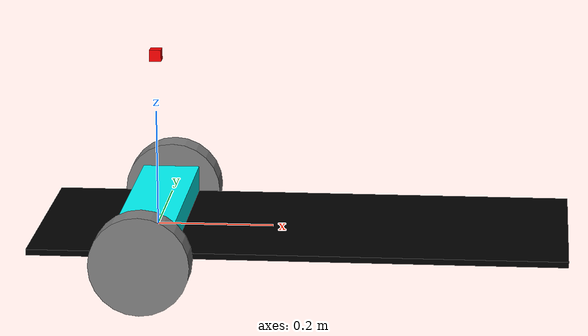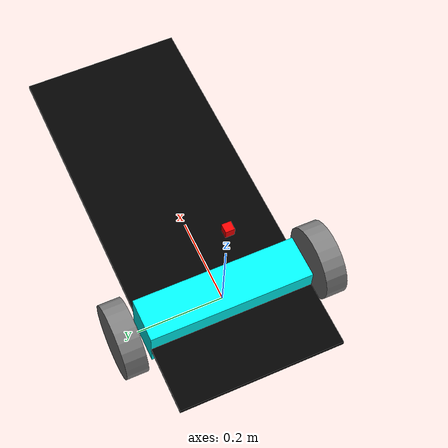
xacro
<?xml version="1.0"?>

<robot name="myfirst" xmlns:xacro="http://ros.org/wiki/xacro">

  <xacro:include filename="$(find robot_launch)/urdf/materials.urdf"/>

  <xacro:property name="base_width" value="0.38"/>
  <xacro:property name="base_length" value="0.910"/>
  <xacro:property name="base_height" value="0.01"/>
  <xacro:property name="base_xoff" value="0.20"/>
  <xacro:property name="base_zoff" value="0.02"/>

  <xacro:property name="bar_height" value="0.540"/>

  <xacro:property name="wheel_radius" value="0.085"/>
  <xacro:property name="wheel_width" value="0.05"/>
  <xacro:property name="wheel_ygap" value="0.045"/>
  <xacro:property name="wheel_zoff" value="0.0"/>
  <xacro:property name="wheel_xoff" value="0.0"/>

  <xacro:property name="caster_xoff" value="0.14"/>

  <!-- Robot Base -->
  <link name="base_link">
  <!-- middle in between wheels -->
    <visual>
      <geometry>
        <box size="0.1 ${base_width} 0.1"/>
      </geometry>
      <material name="Cyan" />
    </visual>
  </link>

  <link name="box_link">
    <visual>
      <geometry>
        <box size="${base_length} ${base_width} ${base_height}"/>
      </geometry>
      <material name="Black" />
    </visual>
  </link>

    <joint name="box_joint" type="fixed">
      <parent link="base_link"/>
      <child link="box_link"/>
      <origin xyz="${base_length / 2 - base_xoff} 0 0" rpy="0 0 0"/>
    </joint>

  <xacro:include filename="$(find robot_launch)/urdf/imu.urdf.xacro" />
        <!-- The following kinect2_xacro defines the _kinect2_rgb_optical_frame
        And includes the fixed joint  -->
        <xacro:imu_sensor parent="base_link" xyz="0 0 0.30" rpy="0 0 0">
        </xacro:imu_sensor>
<!-- The following kinect2_xacro defines the _kinect2_rgb_optical_frame
        And includes the fixed joint  -->

  <!-- Robot Footprint -->
  <link name="base_footprint"/>

  <joint name="base_joint" type="fixed">
    <parent link="base_link"/>
    <child link="base_footprint"/>
    <origin xyz="0.0 0.0 ${-(wheel_radius+wheel_zoff)}" rpy="0 0 0"/>
  </joint>

    <!-- Wheels -->
  <xacro:macro name="wheel" params="prefix x_reflect y_reflect">
    <link name="${prefix}_link">
      <visual>
        <origin xyz="0 0 0" rpy="${pi/2} 0 0"/>
        <geometry>
            <cylinder radius="${wheel_radius}" length="${wheel_width}"/>
        </geometry>
        <material name="Gray">
          <color rgba="0.5 0.5 0.5 1.0"/>
        </material>
      </visual>
    </link>

    <joint name="${prefix}_joint" type="continuous">
      <parent link="base_link"/>
      <child link="${prefix}_link"/>
      <origin xyz="${x_reflect*wheel_xoff} ${y_reflect*(base_width/2+wheel_ygap)} ${-wheel_zoff}" rpy="0 0 0"/>
      <axis xyz="0 1 0"/>
    </joint>
  </xacro:macro>

  <xacro:wheel prefix="left_wheel" x_reflect="-1" y_reflect="1" />
  <xacro:wheel prefix="right_wheel" x_reflect="-1" y_reflect="-1" />

    <!-- Caster Wheel -->

</robot>

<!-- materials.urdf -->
<robot>
        <material name="Cyan">
            <color rgba="0 1.0 1.0 1.0"/>
        </material>

  <material name="Green">
    <color rgba="0.0 1.0 0.0 1.0"/>
  </material>

  <material name="Yellow">
    <color rgba="1.0 1.0 0.0 1.0"/>
  </material>

  <material name="LightYellow">
    <color rgba="1.0 1.0 0.6 1.0"/>
  </material>

  <material name="Blue">
    <color rgba="0.0 0.0 1.0 1.0"/>
  </material>

  <material name="LightBlue">
    <color rgba="0.6 0.79 1.0 1.0"/>
  </material>

  <material name="DarkGrey">
    <color rgba="0.31 0.31 0.31 1.0"/>
  </material>

  <material name="LightGrey">
    <color rgba="0.83 0.83 0.83 1.0"/>
  </material>

  <material name="MediumGrey">
    <color rgba="0.5 0.5 0.5 1.0"/>
  </material>

  <material name="Black">
    <color rgba="0.0 0.0 0.0 1.0"/>
  </material>

  <material name="Red">
    <color rgba="1.0 0.0 0.0 1.0"/>
  </material>

  <material name="Orange">
    <color rgba="1.0 0.65 0.0 1.0"/>
  </material>
</robot>

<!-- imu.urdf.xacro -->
<robot xmlns:xacro="http://www.ros.org/wiki/xacro" name="imu">

<xacro:macro name="imu_sensor" params="xyz rpy parent">
    <joint name="imu_sensor_joint" type="fixed">
        <axis xyz="0 0 1" />
        <origin xyz="${xyz}" rpy="${rpy}"/>
        <parent link="${parent}"/>
        <child link="imu_sensor_link"/>
    </joint>

    <link name="imu_sensor_link">
        <collision>
            <origin xyz="0 0 0" rpy="0 0 0"/>
            <geometry>
                <box size="0.02 0.02 0.02"/>
            </geometry>
        </collision>
        <visual>
            <origin xyz="0 0 0" rpy="0 0 0"/>
            <geometry>
                <box size="0.02 0.02 0.02"/>
            </geometry>
            <material name="Red"/>
        </visual>
        <inertial>
            <mass value="0.001" />
            <origin xyz="0 0 0" rpy="0 0 0"/>
            <inertia ixx="0.00000015" ixy="0" ixz="0" iyy="0.00000015" iyz="0" izz="0.00000015" />
        </inertial>
    </link>

    <gazebo reference="imu_sensor_link">
        <gravity>true</gravity>
        <sensor name='imu_sensor' type='imu'>
            <always_on>1</always_on>
            <update_rate>1000</update_rate>
            <visualize>1</visualize>
            <topic>__default_topic__</topic>
            <plugin name='imu_plugin' filename='libgazebo_ros_imu_sensor.so'>
                <topicName>imu/data</topicName>
                <bodyName>imu_sensor_link</bodyName>
                <frameName>imu_sensor_link</frameName>
                <updateRateHZ>32.0</updateRateHZ>
                <gaussianNoise>0.0</gaussianNoise>
                <xyzOffset>0 0 0</xyzOffset>
                <rpyOffset>0 0 0</rpyOffset>
            </plugin>
            <pose>0 0 0 0 0 0</pose>
        </sensor>
    </gazebo>

</xacro:macro>

</robot>
